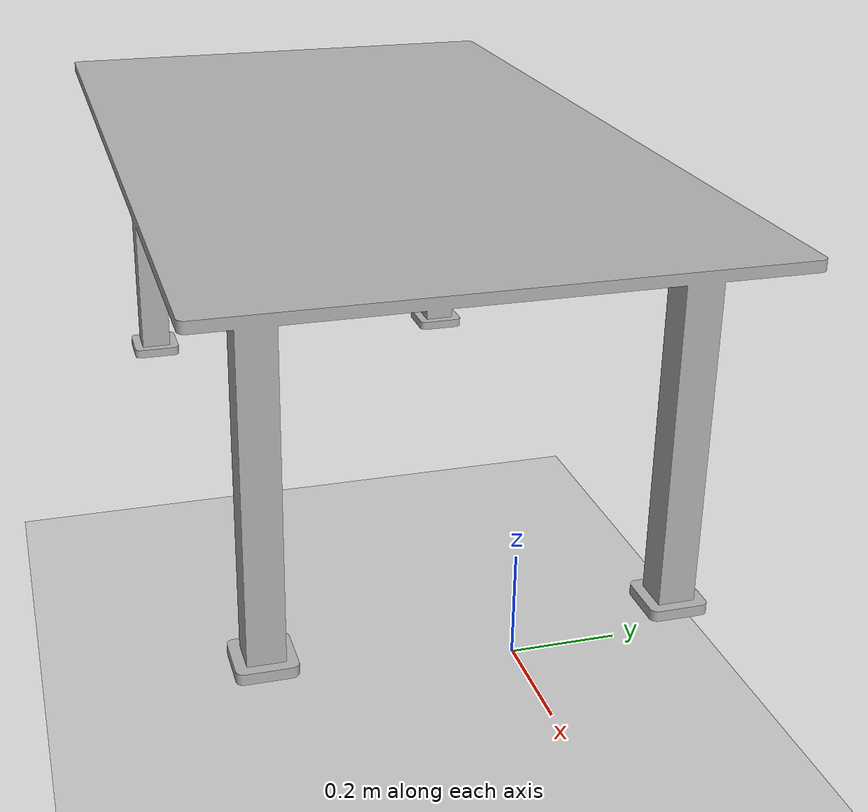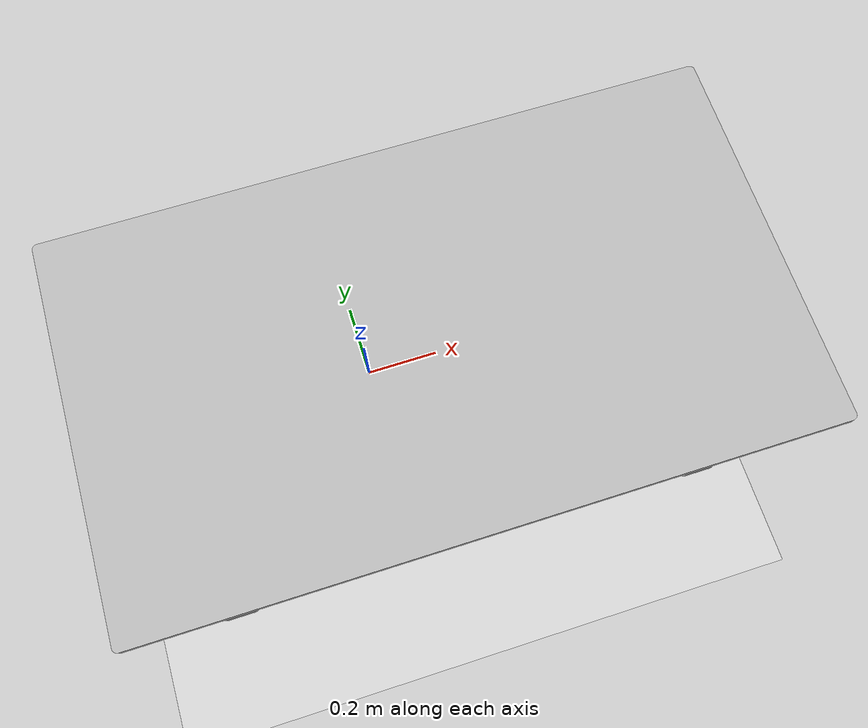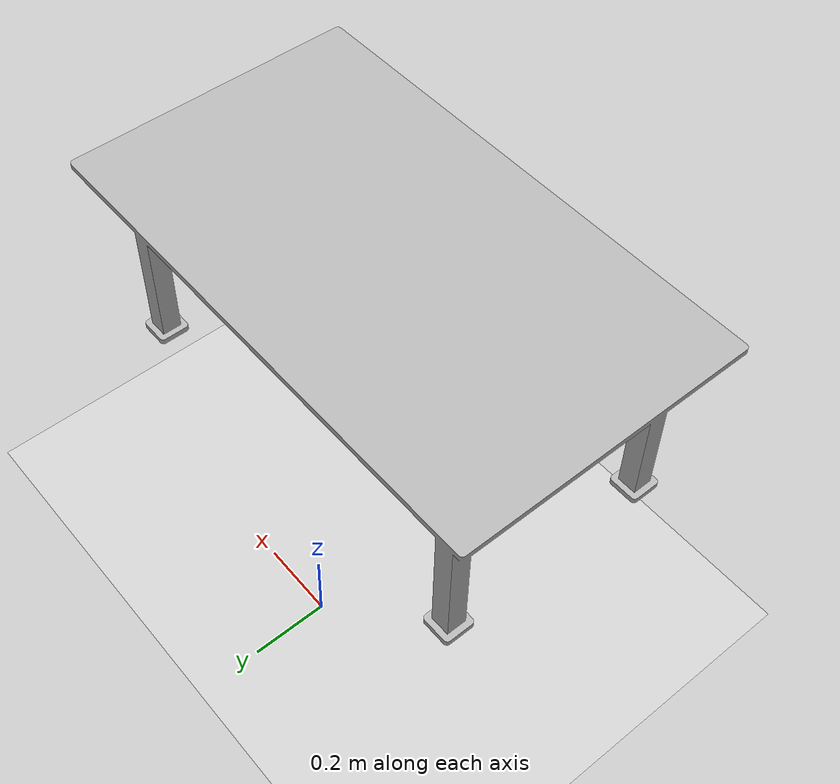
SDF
<?xml version="1.0" ?>
<sdf version="1.6">
  <world name="rebel_world">
    <!-- Licht -->
    <light name="sun" type="directional">
      <cast_shadows>true</cast_shadows>
      <pose>0 0 10 0 0 0</pose>
      <diffuse>1 1 1 1</diffuse>
      <specular>0.5 0.5 0.5 1</specular>
      <direction>-0.5 0.1 -0.9</direction>
    </light>

    <!-- Boden -->
    <model name="ground_plane">
      <static>true</static>
      <link name="link">
        <collision name="collision">
          <geometry>
            <plane>
              <normal>0 0 1</normal>
              <size>100 100</size>
            </plane>
          </geometry>
        </collision>
        <visual name="visual">
          <geometry>
            <plane>
              <normal>0 0 1</normal>
              <size>100 100</size>
            </plane>
          </geometry>
        </visual>
      </link>
    </model>

<!-- Tisch / Prozessstation -->
    <model name="tisch">
      <static>true</static>
      <pose>0 0 0 0 0 0</pose>
      <link name="tisch_link">
        <collision name="tisch_collision">
          <geometry>
            <mesh>
              <uri>file:///home/lukas/GreifpunktStudien/src/igus_rebel_ros2/src/igus_rebel_description/meshes/station/Tisch.stl</uri>
              <scale>1.0 1.0 1.0</scale>
            </mesh>
          </geometry>
        </collision>
        <visual name="tisch_visual">
          <material>
            <ambient>0.7 0.7 0.7 1</ambient>
            <diffuse>0.7 0.7 0.7 1</diffuse>
            <specular>0.1 0.1 0.1 1</specular>
          </material>
          <geometry>
            <mesh>
              <uri>file:///home/lukas/GreifpunktStudien/src/igus_rebel_ros2/src/igus_rebel_description/meshes/station/Tisch.stl</uri>
              <scale>1.0 1.0 1.0</scale>
            </mesh>
          </geometry>
        </visual>
      </link>
    </model>

  </world>
</sdf>
